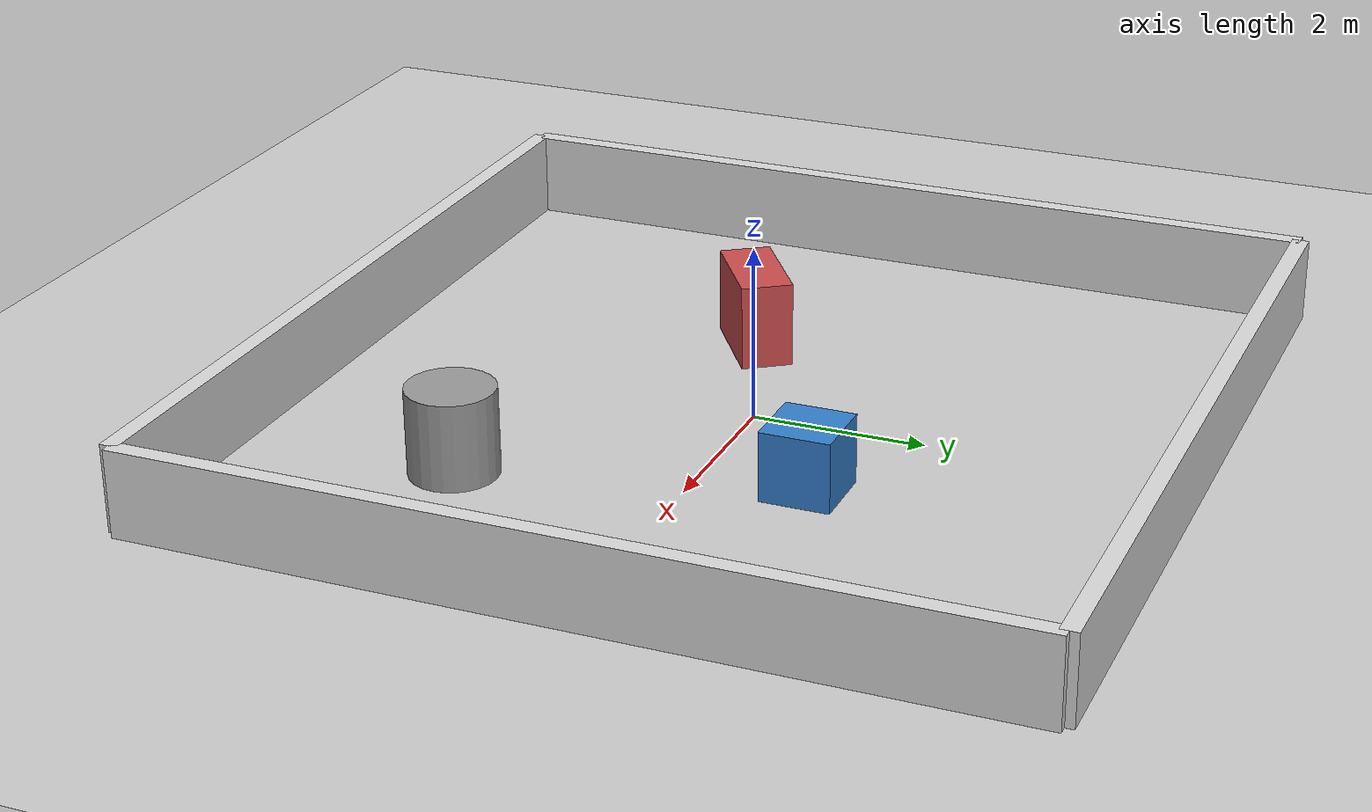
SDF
<?xml version="1.0" ?>
<sdf version="1.9">
  <world name="default">
    <plugin filename="gz-sim-physics-system" name="gz::sim::systems::Physics" />
    <plugin filename="gz-sim-user-commands-system" name="gz::sim::systems::UserCommands" />
    <plugin filename="gz-sim-scene-broadcaster-system" name="gz::sim::systems::SceneBroadcaster" />
    <plugin filename="gz-sim-sensors-system" name="gz::sim::systems::Sensors">
      <render_engine>ogre2</render_engine>
    </plugin>

    <physics name="100hz" type="ignored">
      <max_step_size>0.01</max_step_size>
      <real_time_update_rate>100</real_time_update_rate>
      <real_time_factor>1.0</real_time_factor>
    </physics>

    <gravity>0 0 -9.8</gravity>

    <gui fullscreen="0">
      <camera name="user_camera">
        <pose>0.1075 6.1474 11.2356 0 -1.0854 -1.5712</pose>
        <view_controller>orbit</view_controller>
        <projection_type>perspective</projection_type>
      </camera>
    </gui>

    <scene>
      <ambient>0.6 0.6 0.6 1.0</ambient>
      <background>0.8 0.8 0.8 1.0</background>
      <shadows>true</shadows>
    </scene>

    <light name="sun" type="directional">
      <cast_shadows>true</cast_shadows>
      <pose>0 0 10 0 0 0</pose>
      <diffuse>0.8 0.8 0.8 1</diffuse>
      <specular>0.2 0.2 0.2 1</specular>
      <attenuation>
        <range>1000</range>
        <constant>0.9</constant>
        <linear>0.01</linear>
        <quadratic>0.001</quadratic>
      </attenuation>
      <direction>-0.5 0.1 -0.9</direction>
    </light>

    <model name="ground_plane">
      <static>true</static>
      <link name="link">
        <collision name="collision">
          <geometry>
            <plane>
              <normal>0 0 1</normal>
              <size>100 100</size>
            </plane>
          </geometry>
        </collision>
        <visual name="visual">
          <geometry>
            <plane>
              <normal>0 0 1</normal>
              <size>100 100</size>
            </plane>
          </geometry>
          <material>
            <ambient>0.8 0.8 0.8 1</ambient>
            <diffuse>0.8 0.8 0.8 1</diffuse>
            <specular>0.1 0.1 0.1 1</specular>
          </material>
        </visual>
      </link>
    </model>

    <model name="wall_north">
      <static>true</static>
      <pose>0 5 0.5 0 0 0</pose>
      <link name="link">
        <collision name="collision">
          <geometry>
            <box><size>10 0.2 1</size></box>
          </geometry>
        </collision>
        <visual name="visual">
          <geometry>
            <box><size>10 0.2 1</size></box>
          </geometry>
          <material>
            <ambient>0.85 0.85 0.85 1</ambient>
            <diffuse>0.85 0.85 0.85 1</diffuse>
          </material>
        </visual>
      </link>
    </model>

    <model name="wall_south">
      <static>true</static>
      <pose>0 -5 0.5 0 0 0</pose>
      <link name="link">
        <collision name="collision">
          <geometry>
            <box><size>10 0.2 1</size></box>
          </geometry>
        </collision>
        <visual name="visual">
          <geometry>
            <box><size>10 0.2 1</size></box>
          </geometry>
          <material>
            <ambient>0.85 0.85 0.85 1</ambient>
            <diffuse>0.85 0.85 0.85 1</diffuse>
          </material>
        </visual>
      </link>
    </model>

    <model name="wall_east">
      <static>true</static>
      <pose>5 0 0.5 0 0 1.5708</pose>
      <link name="link">
        <collision name="collision">
          <geometry>
            <box><size>10 0.2 1</size></box>
          </geometry>
        </collision>
        <visual name="visual">
          <geometry>
            <box><size>10 0.2 1</size></box>
          </geometry>
          <material>
            <ambient>0.85 0.85 0.85 1</ambient>
            <diffuse>0.85 0.85 0.85 1</diffuse>
          </material>
        </visual>
      </link>
    </model>

    <model name="wall_west">
      <static>true</static>
      <pose>-5 0 0.5 0 0 1.5708</pose>
      <link name="link">
        <collision name="collision">
          <geometry>
            <box><size>10 0.2 1</size></box>
          </geometry>
        </collision>
        <visual name="visual">
          <geometry>
            <box><size>10 0.2 1</size></box>
          </geometry>
          <material>
            <ambient>0.85 0.85 0.85 1</ambient>
            <diffuse>0.85 0.85 0.85 1</diffuse>
          </material>
        </visual>
      </link>
    </model>

    <model name="obstacle_box_1">
      <static>true</static>
      <pose>1.5 1.2 0.4 0 0 0</pose>
      <link name="link">
        <collision name="collision">
          <geometry>
            <box><size>0.8 0.8 0.8</size></box>
          </geometry>
        </collision>
        <visual name="visual">
          <geometry>
            <box><size>0.8 0.8 0.8</size></box>
          </geometry>
          <material>
            <ambient>0.2 0.5 0.8 1</ambient>
            <diffuse>0.2 0.5 0.8 1</diffuse>
          </material>
        </visual>
      </link>
    </model>

    <model name="obstacle_box_2">
      <static>true</static>
      <pose>-1.8 -0.7 0.5 0 0 0.6</pose>
      <link name="link">
        <collision name="collision">
          <geometry>
            <box><size>1.2 0.6 1.0</size></box>
          </geometry>
        </collision>
        <visual name="visual">
          <geometry>
            <box><size>1.2 0.6 1.0</size></box>
          </geometry>
          <material>
            <ambient>0.8 0.3 0.3 1</ambient>
            <diffuse>0.8 0.3 0.3 1</diffuse>
          </material>
        </visual>
      </link>
    </model>

    <model name="unit_cylinder">
      <static>true</static>
      <pose>2.46 -2.46 0.5 0 0 0</pose>
      <link name="link">
        <collision name="collision">
          <geometry>
            <cylinder>
              <radius>0.5</radius>
              <length>1.0</length>
            </cylinder>
          </geometry>
        </collision>
        <visual name="visual">
          <geometry>
            <cylinder>
              <radius>0.5</radius>
              <length>1.0</length>
            </cylinder>
          </geometry>
          <material>
            <ambient>0.6 0.6 0.6 1</ambient>
            <diffuse>0.6 0.6 0.6 1</diffuse>
          </material>
        </visual>
      </link>
    </model>
  </world>
</sdf>
